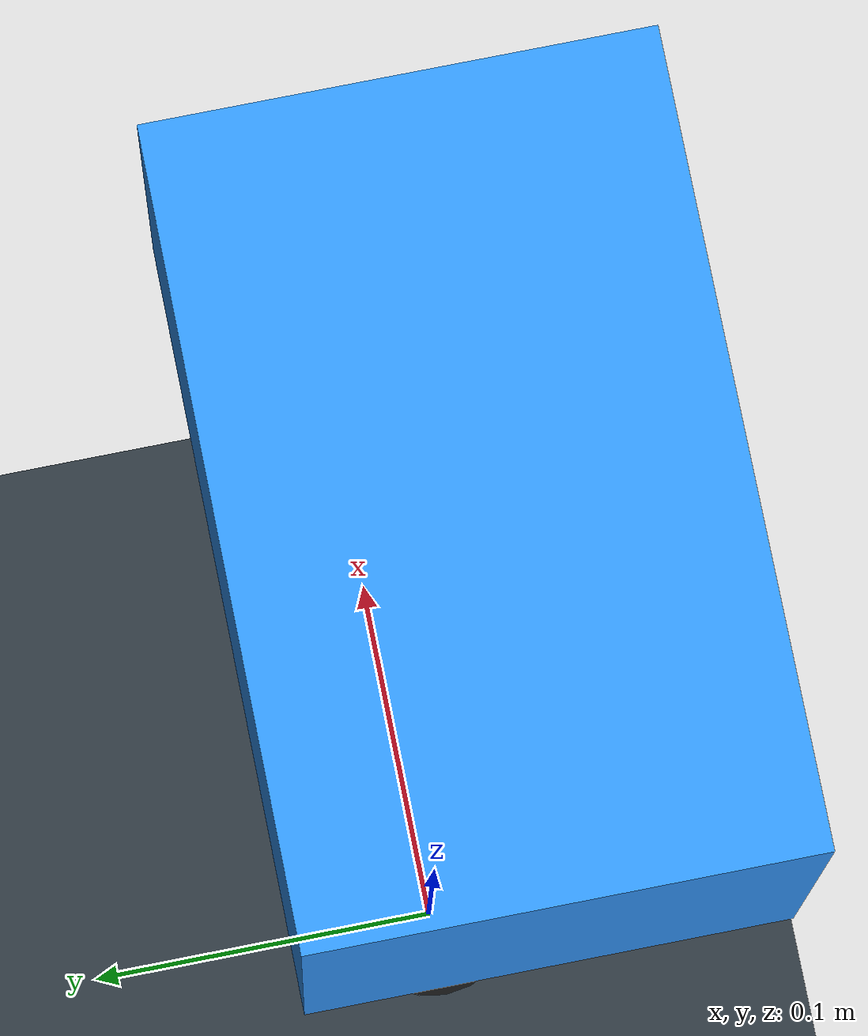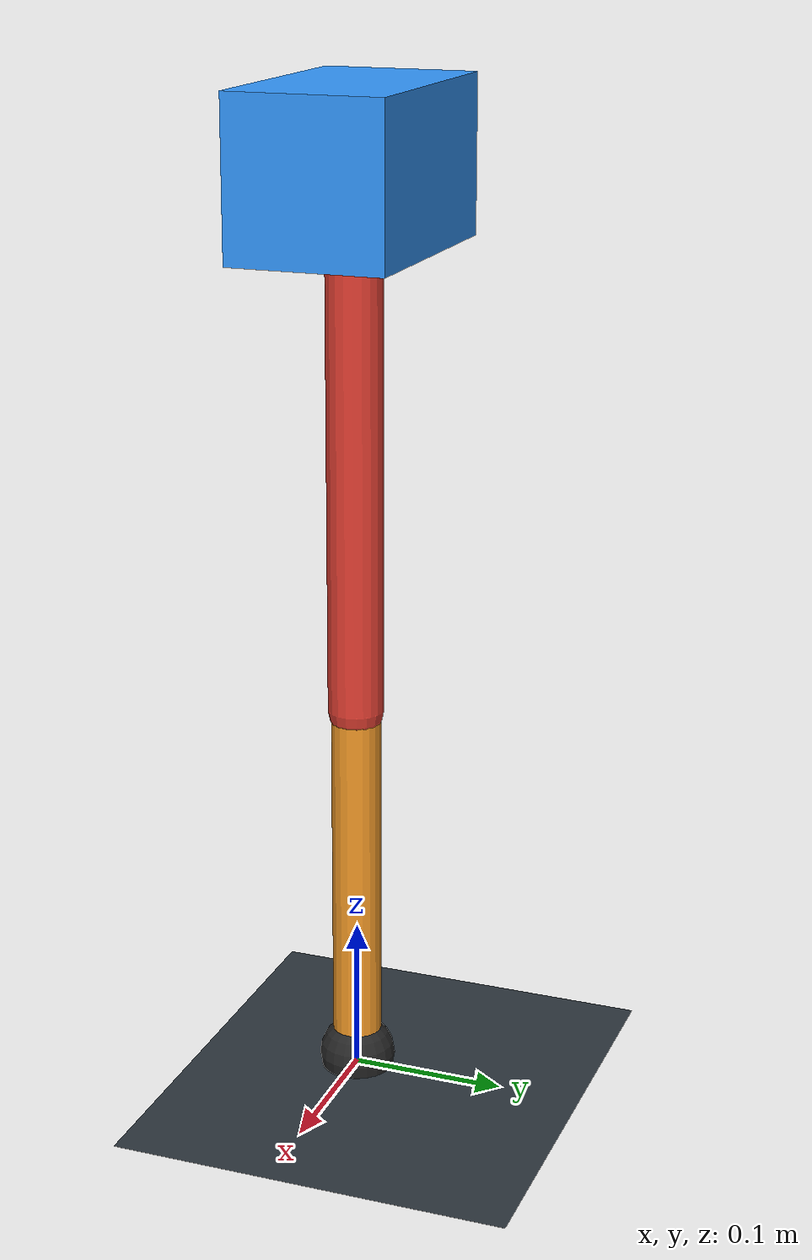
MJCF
<mujoco model="single_axis_two_bar">
  <compiler angle="radian" inertiafromgeom="true"/>
  <option timestep="0.001" integrator="implicitfast" gravity="0 0 -9.81"/>
  <default>
    <joint damping="0.08"/>
    <geom friction="1.2 0.01 0.0001" condim="3"/>
  </default>
  <worldbody>
    <geom name="floor" type="plane" size="5 5 0.1" rgba="0.18 0.22 0.25 1"/>
    <body name="carriage" pos="0 0 0.5965017007733907">
      <joint name="pole_slide" type="slide" axis="0 0 1"/>
      <geom name="payload" type="box" size="0.08 0.05 0.05" mass="2.420393404821529" rgba="0.2 0.6 1 1"/>
      <body name="thigh" pos="0 0 0">
        <joint name="hip" type="hinge" axis="0 1 0"/>
        <geom name="thigh_link" type="capsule" fromto="0 0 0 0 0 -0.3442911652896311" size="0.018" mass="0.24531200467522477" rgba="0.9 0.25 0.2 1"/>
        <body name="shank" pos="0 0 -0.3442911652896311">
          <joint name="knee" type="hinge" axis="0 1 0"/>
          <geom name="shank_link" type="capsule" fromto="0 0 0 0 0 -0.24488584581695721" size="0.016" mass="0.17448440102553803" rgba="0.95 0.6 0.15 1"/>
          <geom name="foot" type="sphere" pos="0 0 -0.24488584581695721" size="0.025" mass="0.03" rgba="0.15 0.15 0.15 1"/>
          <site name="toe" pos="0 0 -0.24488584581695721" size="0.008"/>
        </body>
      </body>
    </body>
  </worldbody>
  <actuator>
    <motor name="hip_motor" joint="hip" ctrlrange="-24.008188621418974 24.008188621418974"/>
    <motor name="knee_motor" joint="knee" ctrlrange="-69.99732983116755 69.99732983116755"/>
  </actuator>
</mujoco>
